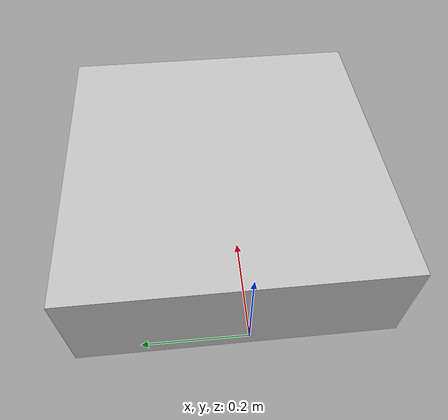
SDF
<?xml version="1.0" ?>
<sdf version="1.6">
  <model name="plastic_block4">
    <!-- dynamic, not static -->
    <static>false</static>
    <pose>0  0  0.2  0  0    0</pose>

    <link name="new_link">
      <inertial>
        <mass>0.5</mass>
        <inertia>
          <ixx>0.0052</ixx><iyy>0.0052</iyy><izz>0.0052</izz>
          <ixy>0</ixy><ixz>0</ixz><iyz>0</iyz>
        </inertia>
      </inertial>
      <collision name="collision">
        <geometry>
          <mesh>
            <scale>0.3 0.3 0.1</scale>
            <uri>model://plastic_block4/meshes/plastic_block.stl</uri>
          </mesh>
        </geometry>
        <surface>
          <friction>
            <ode><mu>0.04</mu><mu2>0.04</mu2></ode>
          </friction>
        </surface>
      </collision>
      <visual name="visual">
        <geometry>
          <mesh>
            <scale>0.3 0.3 0.1</scale>
            <uri>model://plastic_block4/meshes/plastic_block.dae</uri>
          </mesh>
        </geometry>
      </visual>
    </link>
  </model>
</sdf>
